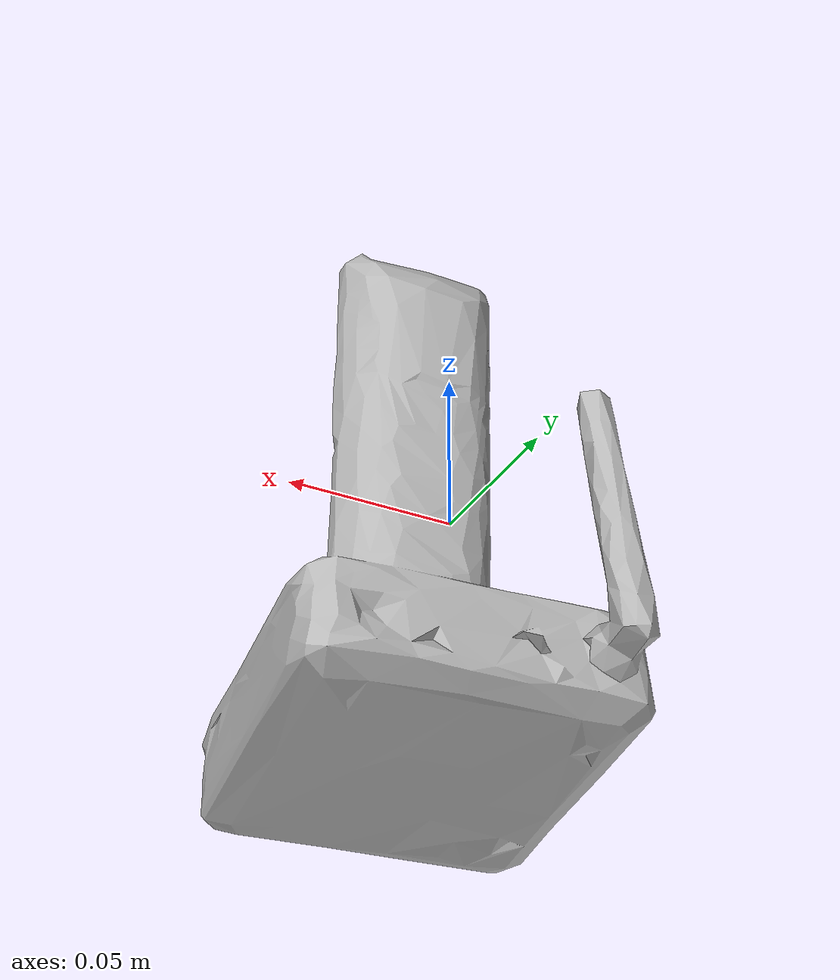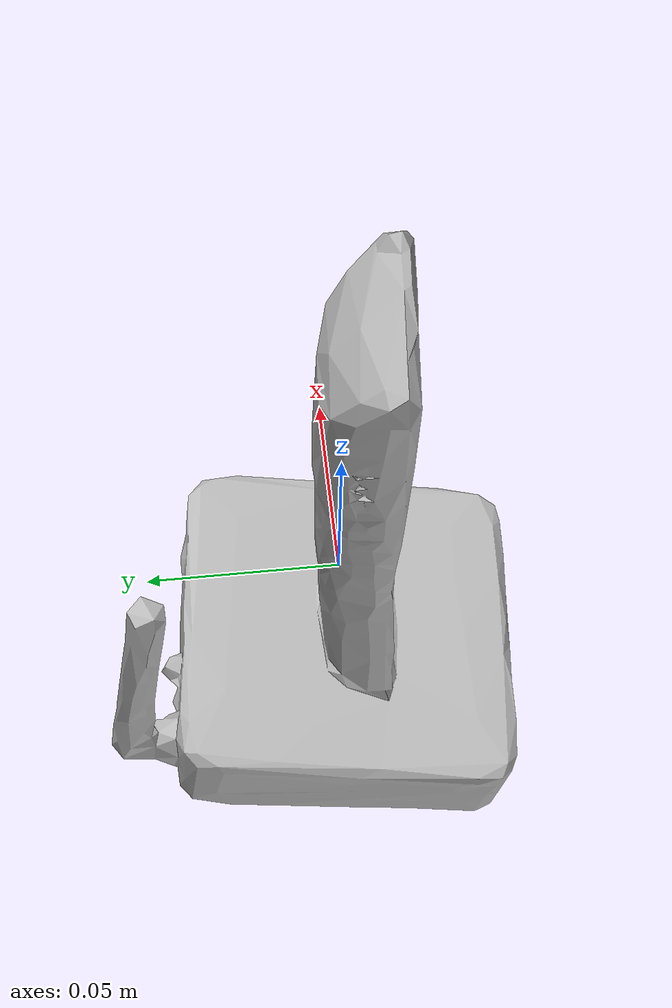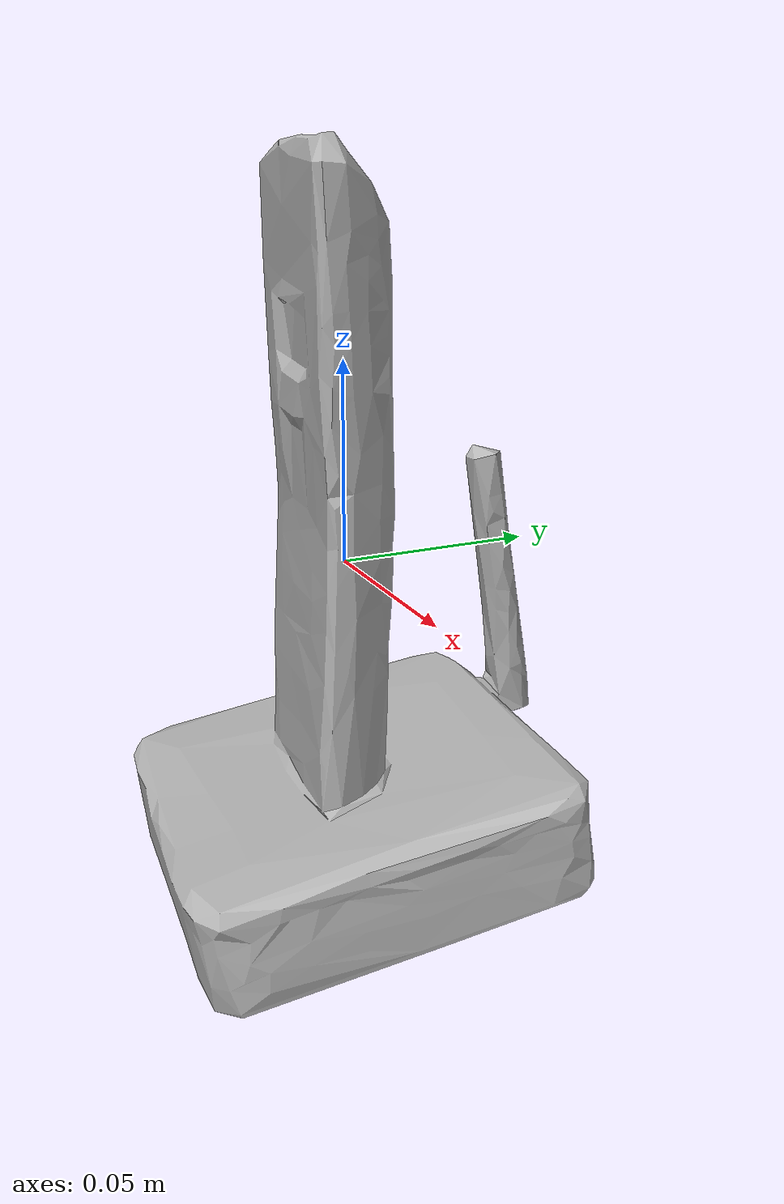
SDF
<?xml version="1.0" ?>
<sdf version="1.4">
    <model name='phone_all'>
      <link name='link'>
        <pose>0 0 0 0 0 0</pose>
        <inertial>
          <mass>0.3</mass>
          <inertia>
            <ixx>0.001246</ixx>
            <ixy>0</ixy>
            <ixz>0</ixz>
            <iyy>0.001134</iyy>
            <iyz>0</iyz>
            <izz>0.000632</izz>
          </inertia>
        </inertial>
        <visual name='phone_all'>
          <pose>0.0 0.0 0.0 0 0 0</pose>
          <geometry>
            <mesh>
              <uri>model://phone_all/meshes/phone_all.dae</uri>
            </mesh>
          </geometry>

        </visual>
        <collision name='phone_all'>
          <pose>0.0 0.0 0.0 0 0 0</pose>
          <geometry>
            <mesh>
              <uri>model://phone_all/meshes/phone_all.dae</uri>
            </mesh>
          </geometry>
          <max_contacts>10</max_contacts>
          <surface>
            <bounce>
              <restitution_coefficient>0.2</restitution_coefficient>
              <threshold>0</threshold>
            </bounce>
            <friction>
              <ode/>
            </friction>
            <contact>
              <ode/>
            </contact>
          </surface>
        </collision>
        <velocity_decay>
          <linear>0</linear>
          <angular>0</angular>
        </velocity_decay>
        <self_collide>0</self_collide>
        <kinematic>0</kinematic>
        <gravity>1</gravity>
      </link>
      <static>0</static>
    </model>
</sdf>
